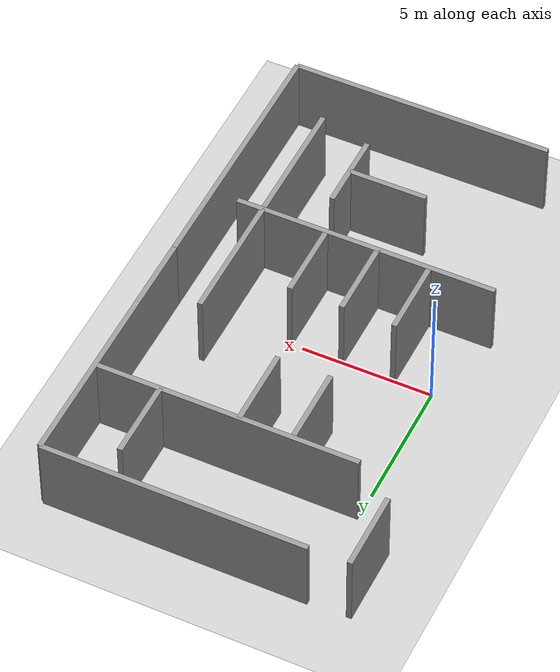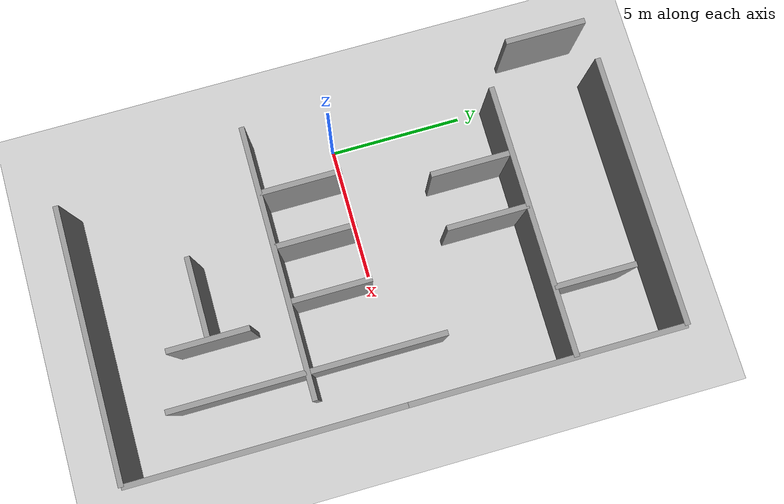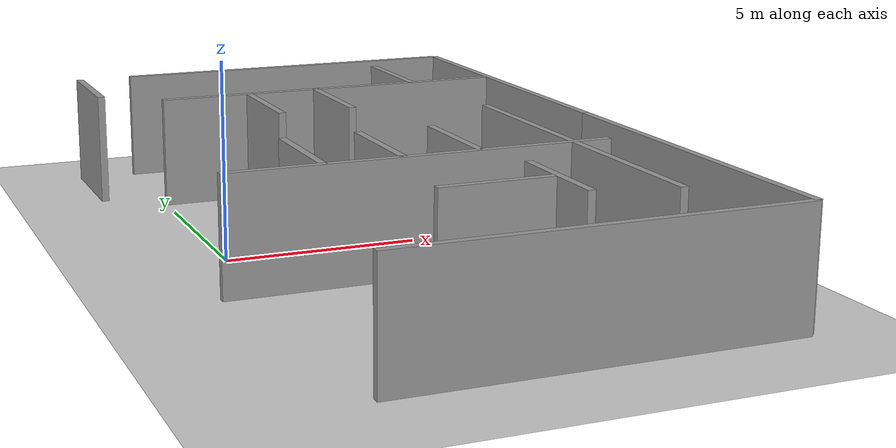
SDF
<sdf version="1.7">
 <world name="default">
  <model name="ground_plane">
   <static>1</static>
   <link name="link">
    <collision name="collision">
     <geometry><plane><normal>0 0 1</normal><size>100 100</size></plane></geometry>
     <surface><friction><ode><mu>100</mu><mu2>50</mu2></ode></friction></surface>
    </collision>
    <visual name="visual">
     <cast_shadows>0</cast_shadows>
     <geometry><plane><normal>0 0 1</normal><size>100 100</size></plane></geometry>
     <material>
      <script><uri>file://media/materials/scripts/gazebo.material</uri><name>Gazebo/Grey</name></script>
     </material>
    </visual>
   </link>
  </model>
  <model name="wall_10x3">
   <link name="link">
    <inertial>
     <mass>1</mass>
     <inertia>
      <ixx>0.166667</ixx>
      <ixy>0</ixy>
      <ixz>0</ixz>
      <iyy>0.166667</iyy>
      <iyz>0</iyz>
      <izz>0.166667</izz>
     </inertia>
    </inertial>
    <visual name="visual">
     <geometry><box><size>10 0.2 3</size></box></geometry>
     <material>
      <script><name>Gazebo/Grey</name><uri>file://media/materials/scripts/gazebo.material</uri></script>
      <shader type="pixel"><normal_map>__default__</normal_map></shader>
      <ambient>0.3 0.3 0.3 1</ambient>
      <diffuse>0.7 0.7 0.7 1</diffuse>
      <specular>0.01 0.01 0.01 1</specular>
      <emissive>0 0 0 1</emissive>
     </material>
    </visual>
    <collision name="collision">
     <geometry><box><size>10 0.2 3</size></box></geometry>
     <surface>
      <friction>
       <ode><mu>1</mu><mu2>1</mu2><fdir1>0 0 0</fdir1><slip1>0</slip1><slip2>0</slip2></ode>
       <torsional>
        <coefficient>1</coefficient>
        <patch_radius>0</patch_radius>
        <surface_radius>0</surface_radius>
        <use_patch_radius>1</use_patch_radius>
        <ode><slip>0</slip></ode>
       </torsional>
      </friction>
      <bounce><restitution_coefficient>0</restitution_coefficient><threshold>1e+06</threshold></bounce>
      <contact>
       <collide_without_contact>0</collide_without_contact>
       <collide_without_contact_bitmask>1</collide_without_contact_bitmask>
       <collide_bitmask>1</collide_bitmask>
       <ode>
        <soft_cfm>0</soft_cfm>
        <soft_erp>0.2</soft_erp>
        <kp>1e+13</kp>
        <kd>1</kd>
        <max_vel>0.01</max_vel>
        <min_depth>0</min_depth>
       </ode>
       <bullet>
        <split_impulse>1</split_impulse>
        <split_impulse_penetration_threshold>-0.01</split_impulse_penetration_threshold>
        <soft_cfm>0</soft_cfm>
        <soft_erp>0.2</soft_erp>
        <kp>1e+13</kp>
        <kd>1</kd>
       </bullet>
      </contact>
     </surface>
    </collision>
   </link>
   <static>1</static>
   <pose>5 10 1.5 0 -0 0</pose>
  </model>
  <model name="wall_10x3_clone_1">
   <link name="link">
    <inertial>
     <mass>1</mass>
     <inertia>
      <ixx>0.166667</ixx>
      <ixy>0</ixy>
      <ixz>0</ixz>
      <iyy>0.166667</iyy>
      <iyz>0</iyz>
      <izz>0.166667</izz>
     </inertia>
    </inertial>
    <visual name="visual">
     <geometry><box><size>10 0.2 3</size></box></geometry>
     <material>
      <script><name>Gazebo/Grey</name><uri>file://media/materials/scripts/gazebo.material</uri></script>
      <shader type="pixel"><normal_map>__default__</normal_map></shader>
      <ambient>0.3 0.3 0.3 1</ambient>
      <diffuse>0.7 0.7 0.7 1</diffuse>
      <specular>0.01 0.01 0.01 1</specular>
      <emissive>0 0 0 1</emissive>
     </material>
    </visual>
    <collision name="collision">
     <geometry><box><size>10 0.2 3</size></box></geometry>
     <surface>
      <friction>
       <ode><mu>1</mu><mu2>1</mu2><fdir1>0 0 0</fdir1><slip1>0</slip1><slip2>0</slip2></ode>
       <torsional>
        <coefficient>1</coefficient>
        <patch_radius>0</patch_radius>
        <surface_radius>0</surface_radius>
        <use_patch_radius>1</use_patch_radius>
        <ode><slip>0</slip></ode>
       </torsional>
      </friction>
      <bounce><restitution_coefficient>0</restitution_coefficient><threshold>1e+06</threshold></bounce>
      <contact>
       <collide_without_contact>0</collide_without_contact>
       <collide_without_contact_bitmask>1</collide_without_contact_bitmask>
       <collide_bitmask>1</collide_bitmask>
       <ode>
        <soft_cfm>0</soft_cfm>
        <soft_erp>0.2</soft_erp>
        <kp>1e+13</kp>
        <kd>1</kd>
        <max_vel>0.01</max_vel>
        <min_depth>0</min_depth>
       </ode>
       <bullet>
        <split_impulse>1</split_impulse>
        <split_impulse_penetration_threshold>-0.01</split_impulse_penetration_threshold>
        <soft_cfm>0</soft_cfm>
        <soft_erp>0.2</soft_erp>
        <kp>1e+13</kp>
        <kd>1</kd>
       </bullet>
      </contact>
     </surface>
    </collision>
   </link>
   <static>1</static>
   <pose>5 -10 1.5 0 -0 0</pose>
  </model>
  <model name="wall_10x3_clone_2">
   <link name="link">
    <inertial>
     <mass>1</mass>
     <inertia>
      <ixx>0.166667</ixx>
      <ixy>0</ixy>
      <ixz>0</ixz>
      <iyy>0.166667</iyy>
      <iyz>0</iyz>
      <izz>0.166667</izz>
     </inertia>
    </inertial>
    <visual name="visual">
     <geometry><box><size>10 0.2 3</size></box></geometry>
     <material>
      <script><name>Gazebo/Grey</name><uri>file://media/materials/scripts/gazebo.material</uri></script>
      <shader type="pixel"><normal_map>__default__</normal_map></shader>
      <ambient>0.3 0.3 0.3 1</ambient>
      <diffuse>0.7 0.7 0.7 1</diffuse>
      <specular>0.01 0.01 0.01 1</specular>
      <emissive>0 0 0 1</emissive>
     </material>
    </visual>
    <collision name="collision">
     <geometry><box><size>10 0.2 3</size></box></geometry>
     <surface>
      <friction>
       <ode><mu>1</mu><mu2>1</mu2><fdir1>0 0 0</fdir1><slip1>0</slip1><slip2>0</slip2></ode>
       <torsional>
        <coefficient>1</coefficient>
        <patch_radius>0</patch_radius>
        <surface_radius>0</surface_radius>
        <use_patch_radius>1</use_patch_radius>
        <ode><slip>0</slip></ode>
       </torsional>
      </friction>
      <bounce><restitution_coefficient>0</restitution_coefficient><threshold>1e+06</threshold></bounce>
      <contact>
       <collide_without_contact>0</collide_without_contact>
       <collide_without_contact_bitmask>1</collide_without_contact_bitmask>
       <collide_bitmask>1</collide_bitmask>
       <ode>
        <soft_cfm>0</soft_cfm>
        <soft_erp>0.2</soft_erp>
        <kp>1e+13</kp>
        <kd>1</kd>
        <max_vel>0.01</max_vel>
        <min_depth>0</min_depth>
       </ode>
       <bullet>
        <split_impulse>1</split_impulse>
        <split_impulse_penetration_threshold>-0.01</split_impulse_penetration_threshold>
        <soft_cfm>0</soft_cfm>
        <soft_erp>0.2</soft_erp>
        <kp>1e+13</kp>
        <kd>1</kd>
       </bullet>
      </contact>
     </surface>
    </collision>
   </link>
   <static>1</static>
   <pose>5 6 1.5 0 -0 0</pose>
  </model>
  <model name="wall_10x3_clone_3_clone_0">
   <link name="link">
    <inertial>
     <mass>1</mass>
     <inertia>
      <ixx>0.166667</ixx>
      <ixy>0</ixy>
      <ixz>0</ixz>
      <iyy>0.166667</iyy>
      <iyz>0</iyz>
      <izz>0.166667</izz>
     </inertia>
    </inertial>
    <visual name="visual">
     <geometry><box><size>10 0.2 3</size></box></geometry>
     <material>
      <script><name>Gazebo/Grey</name><uri>file://media/materials/scripts/gazebo.material</uri></script>
      <shader type="pixel"><normal_map>__default__</normal_map></shader>
      <ambient>0.3 0.3 0.3 1</ambient>
      <diffuse>0.7 0.7 0.7 1</diffuse>
      <specular>0.01 0.01 0.01 1</specular>
      <emissive>0 0 0 1</emissive>
     </material>
    </visual>
    <collision name="collision">
     <geometry><box><size>10 0.2 3</size></box></geometry>
     <surface>
      <friction>
       <ode><mu>1</mu><mu2>1</mu2><fdir1>0 0 0</fdir1><slip1>0</slip1><slip2>0</slip2></ode>
       <torsional>
        <coefficient>1</coefficient>
        <patch_radius>0</patch_radius>
        <surface_radius>0</surface_radius>
        <use_patch_radius>1</use_patch_radius>
        <ode><slip>0</slip></ode>
       </torsional>
      </friction>
      <bounce><restitution_coefficient>0</restitution_coefficient><threshold>1e+06</threshold></bounce>
      <contact>
       <collide_without_contact>0</collide_without_contact>
       <collide_without_contact_bitmask>1</collide_without_contact_bitmask>
       <collide_bitmask>1</collide_bitmask>
       <ode>
        <soft_cfm>0</soft_cfm>
        <soft_erp>0.2</soft_erp>
        <kp>1e+13</kp>
        <kd>1</kd>
        <max_vel>0.01</max_vel>
        <min_depth>0</min_depth>
       </ode>
       <bullet>
        <split_impulse>1</split_impulse>
        <split_impulse_penetration_threshold>-0.01</split_impulse_penetration_threshold>
        <soft_cfm>0</soft_cfm>
        <soft_erp>0.2</soft_erp>
        <kp>1e+13</kp>
        <kd>1</kd>
       </bullet>
      </contact>
     </surface>
    </collision>
   </link>
   <static>1</static>
   <pose>10 -5 1.5 0 -0 1.5708</pose>
  </model>
  <model name="wall_10x3_clone_3_clone_1">
   <link name="link">
    <inertial>
     <mass>1</mass>
     <inertia>
      <ixx>0.166667</ixx>
      <ixy>0</ixy>
      <ixz>0</ixz>
      <iyy>0.166667</iyy>
      <iyz>0</iyz>
      <izz>0.166667</izz>
     </inertia>
    </inertial>
    <visual name="visual">
     <geometry><box><size>10 0.2 3</size></box></geometry>
     <material>
      <script><name>Gazebo/Grey</name><uri>file://media/materials/scripts/gazebo.material</uri></script>
      <shader type="pixel"><normal_map>__default__</normal_map></shader>
      <ambient>0.3 0.3 0.3 1</ambient>
      <diffuse>0.7 0.7 0.7 1</diffuse>
      <specular>0.01 0.01 0.01 1</specular>
      <emissive>0 0 0 1</emissive>
     </material>
    </visual>
    <collision name="collision">
     <geometry><box><size>10 0.2 3</size></box></geometry>
     <surface>
      <friction>
       <ode><mu>1</mu><mu2>1</mu2><fdir1>0 0 0</fdir1><slip1>0</slip1><slip2>0</slip2></ode>
       <torsional>
        <coefficient>1</coefficient>
        <patch_radius>0</patch_radius>
        <surface_radius>0</surface_radius>
        <use_patch_radius>1</use_patch_radius>
        <ode><slip>0</slip></ode>
       </torsional>
      </friction>
      <bounce><restitution_coefficient>0</restitution_coefficient><threshold>1e+06</threshold></bounce>
      <contact>
       <collide_without_contact>0</collide_without_contact>
       <collide_without_contact_bitmask>1</collide_without_contact_bitmask>
       <collide_bitmask>1</collide_bitmask>
       <ode>
        <soft_cfm>0</soft_cfm>
        <soft_erp>0.2</soft_erp>
        <kp>1e+13</kp>
        <kd>1</kd>
        <max_vel>0.01</max_vel>
        <min_depth>0</min_depth>
       </ode>
       <bullet>
        <split_impulse>1</split_impulse>
        <split_impulse_penetration_threshold>-0.01</split_impulse_penetration_threshold>
        <soft_cfm>0</soft_cfm>
        <soft_erp>0.2</soft_erp>
        <kp>1e+13</kp>
        <kd>1</kd>
       </bullet>
      </contact>
     </surface>
    </collision>
   </link>
   <static>1</static>
   <pose>10 5 1.5 0 -0 1.5708</pose>
  </model>
  <model name="wall_10x3_clone_2_clone_1">
   <link name="link">
    <inertial>
     <mass>1</mass>
     <inertia>
      <ixx>0.166667</ixx>
      <ixy>0</ixy>
      <ixz>0</ixz>
      <iyy>0.166667</iyy>
      <iyz>0</iyz>
      <izz>0.166667</izz>
     </inertia>
    </inertial>
    <visual name="visual">
     <geometry><box><size>10 0.2 3</size></box></geometry>
     <material>
      <script><name>Gazebo/Grey</name><uri>file://media/materials/scripts/gazebo.material</uri></script>
      <shader type="pixel"><normal_map>__default__</normal_map></shader>
      <ambient>0.3 0.3 0.3 1</ambient>
      <diffuse>0.7 0.7 0.7 1</diffuse>
      <specular>0.01 0.01 0.01 1</specular>
      <emissive>0 0 0 1</emissive>
     </material>
    </visual>
    <collision name="collision">
     <geometry><box><size>10 0.2 3</size></box></geometry>
     <surface>
      <friction>
       <ode><mu>1</mu><mu2>1</mu2><fdir1>0 0 0</fdir1><slip1>0</slip1><slip2>0</slip2></ode>
       <torsional>
        <coefficient>1</coefficient>
        <patch_radius>0</patch_radius>
        <surface_radius>0</surface_radius>
        <use_patch_radius>1</use_patch_radius>
        <ode><slip>0</slip></ode>
       </torsional>
      </friction>
      <bounce><restitution_coefficient>0</restitution_coefficient><threshold>1e+06</threshold></bounce>
      <contact>
       <collide_without_contact>0</collide_without_contact>
       <collide_without_contact_bitmask>1</collide_without_contact_bitmask>
       <collide_bitmask>1</collide_bitmask>
       <ode>
        <soft_cfm>0</soft_cfm>
        <soft_erp>0.2</soft_erp>
        <kp>1e+13</kp>
        <kd>1</kd>
        <max_vel>0.01</max_vel>
        <min_depth>0</min_depth>
       </ode>
       <bullet>
        <split_impulse>1</split_impulse>
        <split_impulse_penetration_threshold>-0.01</split_impulse_penetration_threshold>
        <soft_cfm>0</soft_cfm>
        <soft_erp>0.2</soft_erp>
        <kp>1e+13</kp>
        <kd>1</kd>
       </bullet>
      </contact>
     </surface>
    </collision>
   </link>
   <static>1</static>
   <pose>4 -3 1.5 0 -0 0</pose>
  </model>
  <model name="wall_10x3_clone_3_clone_0_clone">
   <link name="link">
    <inertial>
     <mass>1</mass>
     <inertia>
      <ixx>0.166667</ixx>
      <ixy>0</ixy>
      <ixz>0</ixz>
      <iyy>0.166667</iyy>
      <iyz>0</iyz>
      <izz>0.166667</izz>
     </inertia>
    </inertial>
    <visual name="visual">
     <geometry><box><size>10 0.2 3</size></box></geometry>
     <material>
      <script><name>Gazebo/Grey</name><uri>file://media/materials/scripts/gazebo.material</uri></script>
      <shader type="pixel"><normal_map>__default__</normal_map></shader>
      <ambient>0.3 0.3 0.3 1</ambient>
      <diffuse>0.7 0.7 0.7 1</diffuse>
      <specular>0.01 0.01 0.01 1</specular>
      <emissive>0 0 0 1</emissive>
     </material>
    </visual>
    <collision name="collision">
     <geometry><box><size>10 0.2 3</size></box></geometry>
     <surface>
      <friction>
       <ode><mu>1</mu><mu2>1</mu2><fdir1>0 0 0</fdir1><slip1>0</slip1><slip2>0</slip2></ode>
       <torsional>
        <coefficient>1</coefficient>
        <patch_radius>0</patch_radius>
        <surface_radius>0</surface_radius>
        <use_patch_radius>1</use_patch_radius>
        <ode><slip>0</slip></ode>
       </torsional>
      </friction>
      <bounce><restitution_coefficient>0</restitution_coefficient><threshold>1e+06</threshold></bounce>
      <contact>
       <collide_without_contact>0</collide_without_contact>
       <collide_without_contact_bitmask>1</collide_without_contact_bitmask>
       <collide_bitmask>1</collide_bitmask>
       <ode>
        <soft_cfm>0</soft_cfm>
        <soft_erp>0.2</soft_erp>
        <kp>1e+13</kp>
        <kd>1</kd>
        <max_vel>0.01</max_vel>
        <min_depth>0</min_depth>
       </ode>
       <bullet>
        <split_impulse>1</split_impulse>
        <split_impulse_penetration_threshold>-0.01</split_impulse_penetration_threshold>
        <soft_cfm>0</soft_cfm>
        <soft_erp>0.2</soft_erp>
        <kp>1e+13</kp>
        <kd>1</kd>
       </bullet>
      </contact>
     </surface>
    </collision>
   </link>
   <static>1</static>
   <pose>8 -3 1.5 0 -0 1.5708</pose>
  </model>
  <model name="wall_10x3_clone_3_clone_0_clone_clone_clone_clone_0">
   <link name="link">
    <inertial>
     <mass>1</mass>
     <inertia>
      <ixx>0.166667</ixx>
      <ixy>0</ixy>
      <ixz>0</ixz>
      <iyy>0.166667</iyy>
      <iyz>0</iyz>
      <izz>0.166667</izz>
     </inertia>
    </inertial>
    <visual name="visual">
     <geometry><box><size>3 0.2 3</size></box></geometry>
     <material>
      <script><name>Gazebo/Grey</name><uri>file://media/materials/scripts/gazebo.material</uri></script>
      <shader type="pixel"><normal_map>__default__</normal_map></shader>
      <ambient>0.3 0.3 0.3 1</ambient>
      <diffuse>0.7 0.7 0.7 1</diffuse>
      <specular>0.01 0.01 0.01 1</specular>
      <emissive>0 0 0 1</emissive>
     </material>
    </visual>
    <collision name="collision">
     <geometry><box><size>3 0.2 3</size></box></geometry>
     <surface>
      <friction>
       <ode><mu>1</mu><mu2>1</mu2><fdir1>0 0 0</fdir1><slip1>0</slip1><slip2>0</slip2></ode>
       <torsional>
        <coefficient>1</coefficient>
        <patch_radius>0</patch_radius>
        <surface_radius>0</surface_radius>
        <use_patch_radius>1</use_patch_radius>
        <ode><slip>0</slip></ode>
       </torsional>
      </friction>
      <bounce><restitution_coefficient>0</restitution_coefficient><threshold>1e+06</threshold></bounce>
      <contact>
       <collide_without_contact>0</collide_without_contact>
       <collide_without_contact_bitmask>1</collide_without_contact_bitmask>
       <collide_bitmask>1</collide_bitmask>
       <ode>
        <soft_cfm>0</soft_cfm>
        <soft_erp>0.2</soft_erp>
        <kp>1e+13</kp>
        <kd>1</kd>
        <max_vel>0.01</max_vel>
        <min_depth>0</min_depth>
       </ode>
       <bullet>
        <split_impulse>1</split_impulse>
        <split_impulse_penetration_threshold>-0.01</split_impulse_penetration_threshold>
        <soft_cfm>0</soft_cfm>
        <soft_erp>0.2</soft_erp>
        <kp>1e+13</kp>
        <kd>1</kd>
       </bullet>
      </contact>
     </surface>
    </collision>
   </link>
   <static>1</static>
   <pose>6 -6 1.5 0 -0 1.5708</pose>
  </model>
  <model name="wall_10x3_clone_3_clone_0_clone_clone_clone_clone_clone">
   <link name="link">
    <inertial>
     <mass>1</mass>
     <inertia>
      <ixx>0.166667</ixx>
      <ixy>0</ixy>
      <ixz>0</ixz>
      <iyy>0.166667</iyy>
      <iyz>0</iyz>
      <izz>0.166667</izz>
     </inertia>
    </inertial>
    <visual name="visual">
     <geometry><box><size>3 0.2 3</size></box></geometry>
     <material>
      <script><name>Gazebo/Grey</name><uri>file://media/materials/scripts/gazebo.material</uri></script>
      <shader type="pixel"><normal_map>__default__</normal_map></shader>
      <ambient>0.3 0.3 0.3 1</ambient>
      <diffuse>0.7 0.7 0.7 1</diffuse>
      <specular>0.01 0.01 0.01 1</specular>
      <emissive>0 0 0 1</emissive>
     </material>
    </visual>
    <collision name="collision">
     <geometry><box><size>3 0.2 3</size></box></geometry>
     <surface>
      <friction>
       <ode><mu>1</mu><mu2>1</mu2><fdir1>0 0 0</fdir1><slip1>0</slip1><slip2>0</slip2></ode>
       <torsional>
        <coefficient>1</coefficient>
        <patch_radius>0</patch_radius>
        <surface_radius>0</surface_radius>
        <use_patch_radius>1</use_patch_radius>
        <ode><slip>0</slip></ode>
       </torsional>
      </friction>
      <bounce><restitution_coefficient>0</restitution_coefficient><threshold>1e+06</threshold></bounce>
      <contact>
       <collide_without_contact>0</collide_without_contact>
       <collide_without_contact_bitmask>1</collide_without_contact_bitmask>
       <collide_bitmask>1</collide_bitmask>
       <ode>
        <soft_cfm>0</soft_cfm>
        <soft_erp>0.2</soft_erp>
        <kp>1e+13</kp>
        <kd>1</kd>
        <max_vel>0.01</max_vel>
        <min_depth>0</min_depth>
       </ode>
       <bullet>
        <split_impulse>1</split_impulse>
        <split_impulse_penetration_threshold>-0.01</split_impulse_penetration_threshold>
        <soft_cfm>0</soft_cfm>
        <soft_erp>0.2</soft_erp>
        <kp>1e+13</kp>
        <kd>1</kd>
       </bullet>
      </contact>
     </surface>
    </collision>
   </link>
   <static>1</static>
   <pose>4.5 -6 1.5 0 -0 0</pose>
  </model>
  <model name="wall_10x3_clone_3_clone_0_clone_clone_clone_clone_1">
   <link name="link">
    <inertial>
     <mass>1</mass>
     <inertia>
      <ixx>0.166667</ixx>
      <ixy>0</ixy>
      <ixz>0</ixz>
      <iyy>0.166667</iyy>
      <iyz>0</iyz>
      <izz>0.166667</izz>
     </inertia>
    </inertial>
    <visual name="visual">
     <geometry><box><size>3 0.2 3</size></box></geometry>
     <material>
      <script><name>Gazebo/Grey</name><uri>file://media/materials/scripts/gazebo.material</uri></script>
      <shader type="pixel"><normal_map>__default__</normal_map></shader>
      <ambient>0.3 0.3 0.3 1</ambient>
      <diffuse>0.7 0.7 0.7 1</diffuse>
      <specular>0.01 0.01 0.01 1</specular>
      <emissive>0 0 0 1</emissive>
     </material>
    </visual>
    <collision name="collision">
     <geometry><box><size>3 0.2 3</size></box></geometry>
     <surface>
      <friction>
       <ode><mu>1</mu><mu2>1</mu2><fdir1>0 0 0</fdir1><slip1>0</slip1><slip2>0</slip2></ode>
       <torsional>
        <coefficient>1</coefficient>
        <patch_radius>0</patch_radius>
        <surface_radius>0</surface_radius>
        <use_patch_radius>1</use_patch_radius>
        <ode><slip>0</slip></ode>
       </torsional>
      </friction>
      <bounce><restitution_coefficient>0</restitution_coefficient><threshold>1e+06</threshold></bounce>
      <contact>
       <collide_without_contact>0</collide_without_contact>
       <collide_without_contact_bitmask>1</collide_without_contact_bitmask>
       <collide_bitmask>1</collide_bitmask>
       <ode>
        <soft_cfm>0</soft_cfm>
        <soft_erp>0.2</soft_erp>
        <kp>1e+13</kp>
        <kd>1</kd>
        <max_vel>0.01</max_vel>
        <min_depth>0</min_depth>
       </ode>
       <bullet>
        <split_impulse>1</split_impulse>
        <split_impulse_penetration_threshold>-0.01</split_impulse_penetration_threshold>
        <soft_cfm>0</soft_cfm>
        <soft_erp>0.2</soft_erp>
        <kp>1e+13</kp>
        <kd>1</kd>
       </bullet>
      </contact>
     </surface>
    </collision>
   </link>
   <static>1</static>
   <pose>7.5 7.5 1.5 0 -0 1.5708</pose>
  </model>
  <model name="wall_10x3_clone_3_clone_0_clone_clone_clone_clone_2">
   <link name="link">
    <inertial>
     <mass>1</mass>
     <inertia>
      <ixx>0.166667</ixx>
      <ixy>0</ixy>
      <ixz>0</ixz>
      <iyy>0.166667</iyy>
      <iyz>0</iyz>
      <izz>0.166667</izz>
     </inertia>
    </inertial>
    <visual name="visual">
     <geometry><box><size>3 0.2 3</size></box></geometry>
     <material>
      <script><name>Gazebo/Grey</name><uri>file://media/materials/scripts/gazebo.material</uri></script>
      <shader type="pixel"><normal_map>__default__</normal_map></shader>
      <ambient>0.3 0.3 0.3 1</ambient>
      <diffuse>0.7 0.7 0.7 1</diffuse>
      <specular>0.01 0.01 0.01 1</specular>
      <emissive>0 0 0 1</emissive>
     </material>
    </visual>
    <collision name="collision">
     <geometry><box><size>3 0.2 3</size></box></geometry>
     <surface>
      <friction>
       <ode><mu>1</mu><mu2>1</mu2><fdir1>0 0 0</fdir1><slip1>0</slip1><slip2>0</slip2></ode>
       <torsional>
        <coefficient>1</coefficient>
        <patch_radius>0</patch_radius>
        <surface_radius>0</surface_radius>
        <use_patch_radius>1</use_patch_radius>
        <ode><slip>0</slip></ode>
       </torsional>
      </friction>
      <bounce><restitution_coefficient>0</restitution_coefficient><threshold>1e+06</threshold></bounce>
      <contact>
       <collide_without_contact>0</collide_without_contact>
       <collide_without_contact_bitmask>1</collide_without_contact_bitmask>
       <collide_bitmask>1</collide_bitmask>
       <ode>
        <soft_cfm>0</soft_cfm>
        <soft_erp>0.2</soft_erp>
        <kp>1e+13</kp>
        <kd>1</kd>
        <max_vel>0.01</max_vel>
        <min_depth>0</min_depth>
       </ode>
       <bullet>
        <split_impulse>1</split_impulse>
        <split_impulse_penetration_threshold>-0.01</split_impulse_penetration_threshold>
        <soft_cfm>0</soft_cfm>
        <soft_erp>0.2</soft_erp>
        <kp>1e+13</kp>
        <kd>1</kd>
       </bullet>
      </contact>
     </surface>
    </collision>
   </link>
   <static>1</static>
   <pose>5.5 -1.5 1.5 0 -0 1.5708</pose>
  </model>
  <model name="wall_10x3_clone_3_clone_0_clone_clone_clone_clone_3">
   <link name="link">
    <inertial>
     <mass>1</mass>
     <inertia>
      <ixx>0.166667</ixx>
      <ixy>0</ixy>
      <ixz>0</ixz>
      <iyy>0.166667</iyy>
      <iyz>0</iyz>
      <izz>0.166667</izz>
     </inertia>
    </inertial>
    <visual name="visual">
     <geometry><box><size>3 0.2 3</size></box></geometry>
     <material>
      <script><name>Gazebo/Grey</name><uri>file://media/materials/scripts/gazebo.material</uri></script>
      <shader type="pixel"><normal_map>__default__</normal_map></shader>
      <ambient>0.3 0.3 0.3 1</ambient>
      <diffuse>0.7 0.7 0.7 1</diffuse>
      <specular>0.01 0.01 0.01 1</specular>
      <emissive>0 0 0 1</emissive>
     </material>
    </visual>
    <collision name="collision">
     <geometry><box><size>3 0.2 3</size></box></geometry>
     <surface>
      <friction>
       <ode><mu>1</mu><mu2>1</mu2><fdir1>0 0 0</fdir1><slip1>0</slip1><slip2>0</slip2></ode>
       <torsional>
        <coefficient>1</coefficient>
        <patch_radius>0</patch_radius>
        <surface_radius>0</surface_radius>
        <use_patch_radius>1</use_patch_radius>
        <ode><slip>0</slip></ode>
       </torsional>
      </friction>
      <bounce><restitution_coefficient>0</restitution_coefficient><threshold>1e+06</threshold></bounce>
      <contact>
       <collide_without_contact>0</collide_without_contact>
       <collide_without_contact_bitmask>1</collide_without_contact_bitmask>
       <collide_bitmask>1</collide_bitmask>
       <ode>
        <soft_cfm>0</soft_cfm>
        <soft_erp>0.2</soft_erp>
        <kp>1e+13</kp>
        <kd>1</kd>
        <max_vel>0.01</max_vel>
        <min_depth>0</min_depth>
       </ode>
       <bullet>
        <split_impulse>1</split_impulse>
        <split_impulse_penetration_threshold>-0.01</split_impulse_penetration_threshold>
        <soft_cfm>0</soft_cfm>
        <soft_erp>0.2</soft_erp>
        <kp>1e+13</kp>
        <kd>1</kd>
       </bullet>
      </contact>
     </surface>
    </collision>
   </link>
   <static>1</static>
   <pose>3.5 -1.5 1.5 0 -0 1.5708</pose>
  </model>
  <model name="wall_10x3_clone_3_clone_0_clone_clone_clone_clone_5">
   <link name="link">
    <inertial>
     <mass>1</mass>
     <inertia>
      <ixx>0.166667</ixx>
      <ixy>0</ixy>
      <ixz>0</ixz>
      <iyy>0.166667</iyy>
      <iyz>0</iyz>
      <izz>0.166667</izz>
     </inertia>
    </inertial>
    <visual name="visual">
     <geometry><box><size>3 0.2 3</size></box></geometry>
     <material>
      <script><name>Gazebo/Grey</name><uri>file://media/materials/scripts/gazebo.material</uri></script>
      <shader type="pixel"><normal_map>__default__</normal_map></shader>
      <ambient>0.3 0.3 0.3 1</ambient>
      <diffuse>0.7 0.7 0.7 1</diffuse>
      <specular>0.01 0.01 0.01 1</specular>
      <emissive>0 0 0 1</emissive>
     </material>
    </visual>
    <collision name="collision">
     <geometry><box><size>3 0.2 3</size></box></geometry>
     <surface>
      <friction>
       <ode><mu>1</mu><mu2>1</mu2><fdir1>0 0 0</fdir1><slip1>0</slip1><slip2>0</slip2></ode>
       <torsional>
        <coefficient>1</coefficient>
        <patch_radius>0</patch_radius>
        <surface_radius>0</surface_radius>
        <use_patch_radius>1</use_patch_radius>
        <ode><slip>0</slip></ode>
       </torsional>
      </friction>
      <bounce><restitution_coefficient>0</restitution_coefficient><threshold>1e+06</threshold></bounce>
      <contact>
       <collide_without_contact>0</collide_without_contact>
       <collide_without_contact_bitmask>1</collide_without_contact_bitmask>
       <collide_bitmask>1</collide_bitmask>
       <ode>
        <soft_cfm>0</soft_cfm>
        <soft_erp>0.2</soft_erp>
        <kp>1e+13</kp>
        <kd>1</kd>
        <max_vel>0.01</max_vel>
        <min_depth>0</min_depth>
       </ode>
       <bullet>
        <split_impulse>1</split_impulse>
        <split_impulse_penetration_threshold>-0.01</split_impulse_penetration_threshold>
        <soft_cfm>0</soft_cfm>
        <soft_erp>0.2</soft_erp>
        <kp>1e+13</kp>
        <kd>1</kd>
       </bullet>
      </contact>
     </surface>
    </collision>
   </link>
   <static>1</static>
   <pose>-1.5 8.5 1.5 0 -0 1.5708</pose>
  </model>
  <model name="wall_10x3_clone_3_clone_0_clone_clone_clone_clone_6_clone_4">
   <link name="link">
    <inertial>
     <mass>1</mass>
     <inertia>
      <ixx>0.166667</ixx>
      <ixy>0</ixy>
      <ixz>0</ixz>
      <iyy>0.166667</iyy>
      <iyz>0</iyz>
      <izz>0.166667</izz>
     </inertia>
    </inertial>
    <visual name="visual">
     <geometry><box><size>3 0.2 3</size></box></geometry>
     <material>
      <script><name>Gazebo/Grey</name><uri>file://media/materials/scripts/gazebo.material</uri></script>
      <shader type="pixel"><normal_map>__default__</normal_map></shader>
      <ambient>0.3 0.3 0.3 1</ambient>
      <diffuse>0.7 0.7 0.7 1</diffuse>
      <specular>0.01 0.01 0.01 1</specular>
      <emissive>0 0 0 1</emissive>
     </material>
    </visual>
    <collision name="collision">
     <geometry><box><size>3 0.2 3</size></box></geometry>
     <surface>
      <friction>
       <ode><mu>1</mu><mu2>1</mu2><fdir1>0 0 0</fdir1><slip1>0</slip1><slip2>0</slip2></ode>
       <torsional>
        <coefficient>1</coefficient>
        <patch_radius>0</patch_radius>
        <surface_radius>0</surface_radius>
        <use_patch_radius>1</use_patch_radius>
        <ode><slip>0</slip></ode>
       </torsional>
      </friction>
      <bounce><restitution_coefficient>0</restitution_coefficient><threshold>1e+06</threshold></bounce>
      <contact>
       <collide_without_contact>0</collide_without_contact>
       <collide_without_contact_bitmask>1</collide_without_contact_bitmask>
       <collide_bitmask>1</collide_bitmask>
       <ode>
        <soft_cfm>0</soft_cfm>
        <soft_erp>0.2</soft_erp>
        <kp>1e+13</kp>
        <kd>1</kd>
        <max_vel>0.01</max_vel>
        <min_depth>0</min_depth>
       </ode>
       <bullet>
        <split_impulse>1</split_impulse>
        <split_impulse_penetration_threshold>-0.01</split_impulse_penetration_threshold>
        <soft_cfm>0</soft_cfm>
        <soft_erp>0.2</soft_erp>
        <kp>1e+13</kp>
        <kd>1</kd>
       </bullet>
      </contact>
     </surface>
    </collision>
   </link>
   <static>1</static>
   <pose>2.5 4.5 1.5 0 -0 1.5708</pose>
  </model>
  <model name="wall_10x3_clone_3_clone_0_clone_clone_clone_clone_6_clone_5">
   <link name="link">
    <inertial>
     <mass>1</mass>
     <inertia>
      <ixx>0.166667</ixx>
      <ixy>0</ixy>
      <ixz>0</ixz>
      <iyy>0.166667</iyy>
      <iyz>0</iyz>
      <izz>0.166667</izz>
     </inertia>
    </inertial>
    <visual name="visual">
     <geometry><box><size>3 0.2 3</size></box></geometry>
     <material>
      <script><name>Gazebo/Grey</name><uri>file://media/materials/scripts/gazebo.material</uri></script>
      <shader type="pixel"><normal_map>__default__</normal_map></shader>
      <ambient>0.3 0.3 0.3 1</ambient>
      <diffuse>0.7 0.7 0.7 1</diffuse>
      <specular>0.01 0.01 0.01 1</specular>
      <emissive>0 0 0 1</emissive>
     </material>
    </visual>
    <collision name="collision">
     <geometry><box><size>3 0.2 3</size></box></geometry>
     <surface>
      <friction>
       <ode><mu>1</mu><mu2>1</mu2><fdir1>0 0 0</fdir1><slip1>0</slip1><slip2>0</slip2></ode>
       <torsional>
        <coefficient>1</coefficient>
        <patch_radius>0</patch_radius>
        <surface_radius>0</surface_radius>
        <use_patch_radius>1</use_patch_radius>
        <ode><slip>0</slip></ode>
       </torsional>
      </friction>
      <bounce><restitution_coefficient>0</restitution_coefficient><threshold>1e+06</threshold></bounce>
      <contact>
       <collide_without_contact>0</collide_without_contact>
       <collide_without_contact_bitmask>1</collide_without_contact_bitmask>
       <collide_bitmask>1</collide_bitmask>
       <ode>
        <soft_cfm>0</soft_cfm>
        <soft_erp>0.2</soft_erp>
        <kp>1e+13</kp>
        <kd>1</kd>
        <max_vel>0.01</max_vel>
        <min_depth>0</min_depth>
       </ode>
       <bullet>
        <split_impulse>1</split_impulse>
        <split_impulse_penetration_threshold>-0.01</split_impulse_penetration_threshold>
        <soft_cfm>0</soft_cfm>
        <soft_erp>0.2</soft_erp>
        <kp>1e+13</kp>
        <kd>1</kd>
       </bullet>
      </contact>
     </surface>
    </collision>
   </link>
   <static>1</static>
   <pose>4.5 4.5 1.5 0 -0 1.5708</pose>
  </model>
  <model name="wall_10x3_clone_3_clone_0_clone_clone_clone_clone_6_clone_6">
   <link name="link">
    <inertial>
     <mass>1</mass>
     <inertia>
      <ixx>0.166667</ixx>
      <ixy>0</ixy>
      <ixz>0</ixz>
      <iyy>0.166667</iyy>
      <iyz>0</iyz>
      <izz>0.166667</izz>
     </inertia>
    </inertial>
    <visual name="visual">
     <geometry><box><size>3 0.2 3</size></box></geometry>
     <material>
      <script><name>Gazebo/Grey</name><uri>file://media/materials/scripts/gazebo.material</uri></script>
      <shader type="pixel"><normal_map>__default__</normal_map></shader>
      <ambient>0.3 0.3 0.3 1</ambient>
      <diffuse>0.7 0.7 0.7 1</diffuse>
      <specular>0.01 0.01 0.01 1</specular>
      <emissive>0 0 0 1</emissive>
     </material>
    </visual>
    <collision name="collision">
     <geometry><box><size>3 0.2 3</size></box></geometry>
     <surface>
      <friction>
       <ode><mu>1</mu><mu2>1</mu2><fdir1>0 0 0</fdir1><slip1>0</slip1><slip2>0</slip2></ode>
       <torsional>
        <coefficient>1</coefficient>
        <patch_radius>0</patch_radius>
        <surface_radius>0</surface_radius>
        <use_patch_radius>1</use_patch_radius>
        <ode><slip>0</slip></ode>
       </torsional>
      </friction>
      <bounce><restitution_coefficient>0</restitution_coefficient><threshold>1e+06</threshold></bounce>
      <contact>
       <collide_without_contact>0</collide_without_contact>
       <collide_without_contact_bitmask>1</collide_without_contact_bitmask>
       <collide_bitmask>1</collide_bitmask>
       <ode>
        <soft_cfm>0</soft_cfm>
        <soft_erp>0.2</soft_erp>
        <kp>1e+13</kp>
        <kd>1</kd>
        <max_vel>0.01</max_vel>
        <min_depth>0</min_depth>
       </ode>
       <bullet>
        <split_impulse>1</split_impulse>
        <split_impulse_penetration_threshold>-0.01</split_impulse_penetration_threshold>
        <soft_cfm>0</soft_cfm>
        <soft_erp>0.2</soft_erp>
        <kp>1e+13</kp>
        <kd>1</kd>
       </bullet>
      </contact>
     </surface>
    </collision>
   </link>
   <static>1</static>
   <pose>1.5 -1.5 1.5 0 -0 1.5708</pose>
  </model>
 </world>
</sdf>
